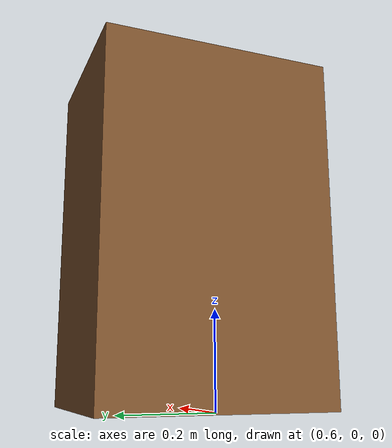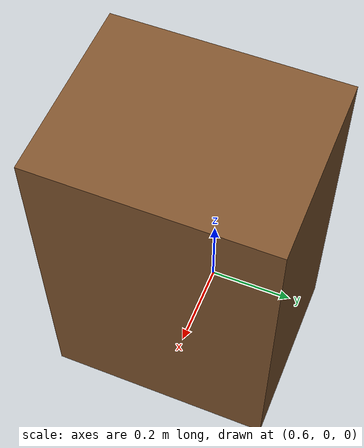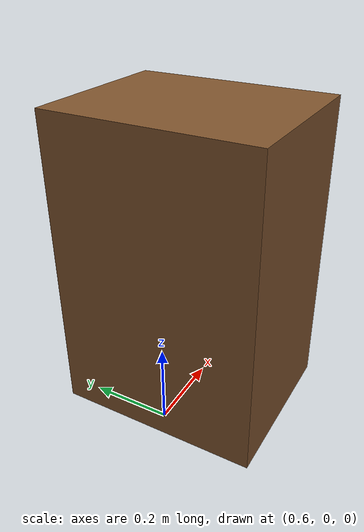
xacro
<?xml version="1.0"?>
<robot xmlns:xacro="http://www.ros.org/wiki/xacro" name="table">
    <link name="table">
        <inertial>
            <origin xyz="0 0 0" rpy="0 0 0"/>
            <mass value="1"/>
            <inertia ixx="0.001" ixy="0" ixz="0" iyy="0.001" iyz="0" izz="0.001" />
        </inertial>
        <visual>
            <geometry>
                <box size="0.4 0.5 0.75"/>
            </geometry>
        </visual>
        <collision>
            <geometry>
                <box size="0.4 0.5 0.75"/>
            </geometry>
        </collision>
    </link>
    <link name="world"></link>
    <joint name="table_joint" type="fixed">
        <parent link="world" />
        <child link="table" />
        <origin xyz="0.75 0.0 0.375" rpy="0 0 0" />
    </joint>
    <gazebo reference="table">
        <material>Gazebo/Brown</material>
    </gazebo>
</robot>
